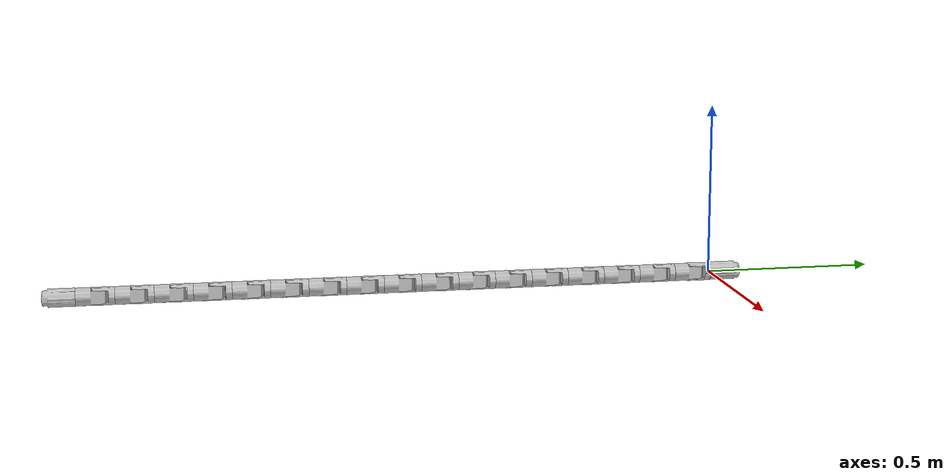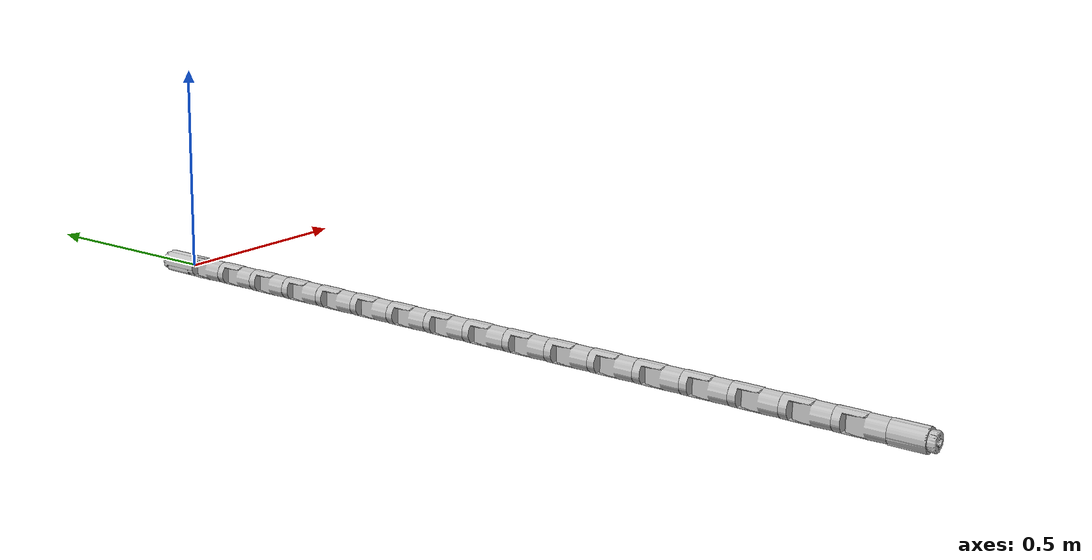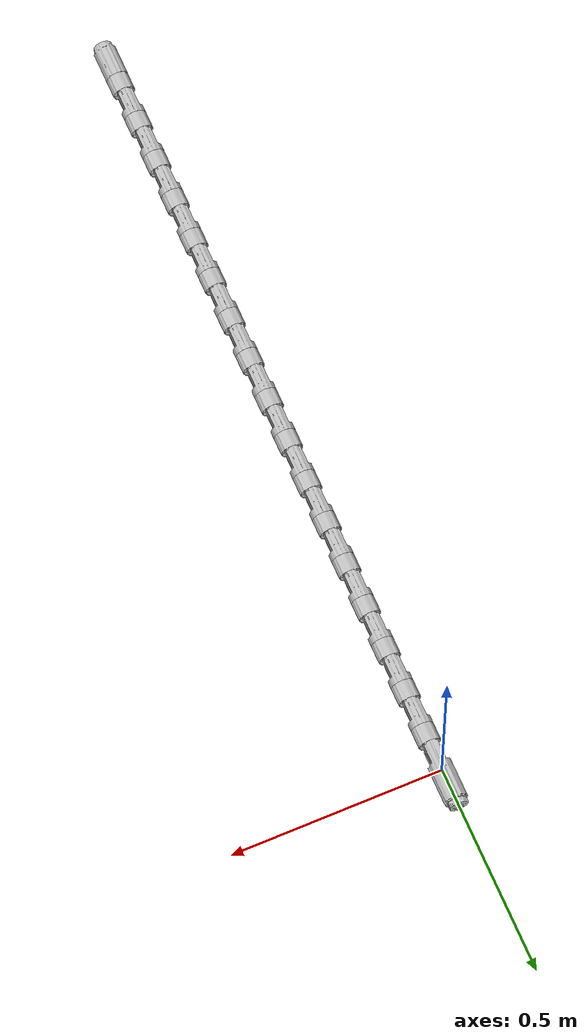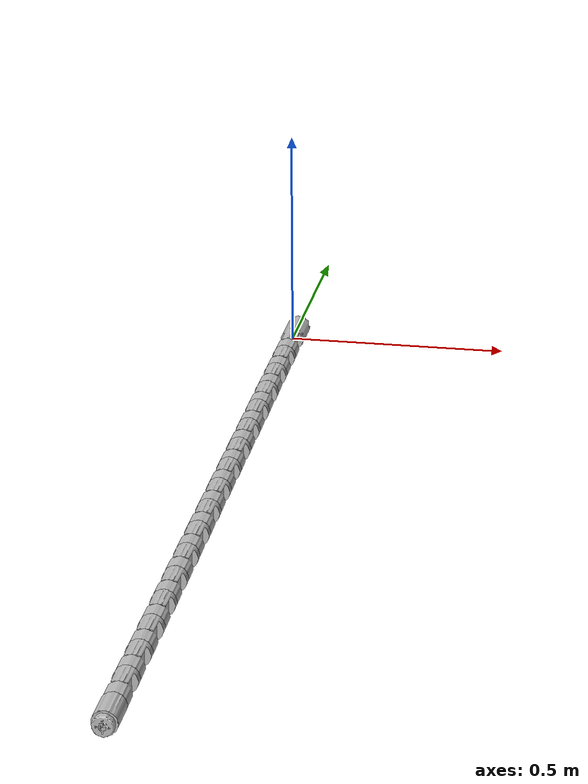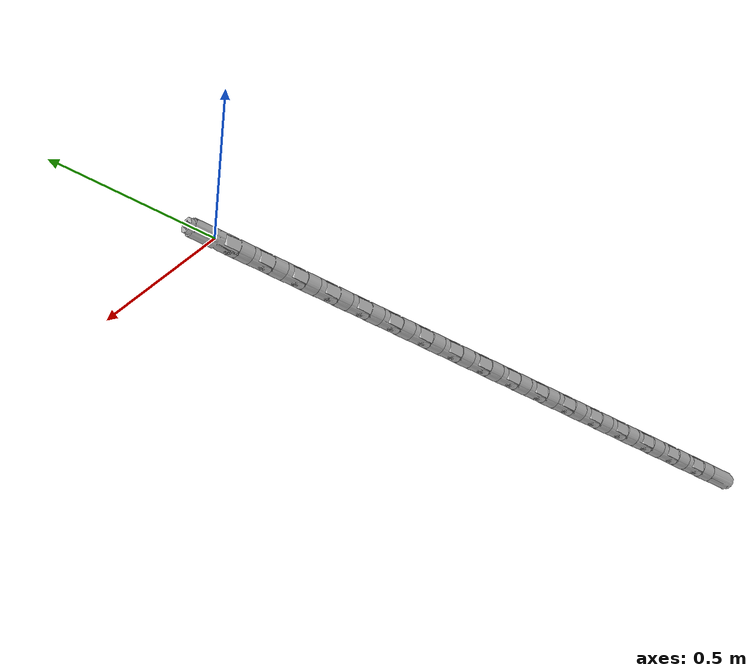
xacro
<?xml version="1.0"?>

<robot xmlns:xacro="http://www.ros.org/wiki/xacro" name="snake_PR">
  <xacro:include filename="$(find snake_test)/robot_description/urdf/snake_description_PR.xacro"/>

  <gazebo>
      <plugin
          name="gazebo_ros_control"
          filename="libgazebo_ros_control.so">
          <robotNamespace>/snake</robotNamespace>
          <robotSimType>gazebo_ros_control/DefaultRobotHWSim</robotSimType>
      </plugin>
  </gazebo>

  <link name="base_footprint">
    <visual>
        <origin xyz="0 0 0" rpy="0 0 0" />
          <geometry>
            <box size="0.001 0.001 0.001" />
          </geometry>
    </visual>
  </link>

   <link
    name="base_link">
    <inertial>
      <origin
        xyz="0.0020108 9.0747E-06 -0.025428"
        rpy="0 0 0" />
      <mass
        value="0.14384" />
      <inertia
        ixx="7.6577E-05"
        ixy="-7.9588E-12"
        ixz="-8.8176E-09"
        iyy="6.729E-05"
        iyz="2.369E-06"
        izz="4.0509E-05" />
    </inertial>
    <visual>
      <origin
        xyz="0 0 0"
        rpy="0 0 0" />
      <geometry>
        <mesh
          filename="package://snake_test/meshes/snake_PR/base_link.STL"/>
      </geometry>
      <material
        name="">
        <color
          rgba="0.75294 0.75294 0.75294 1" />
      </material>
    </visual>
    <collision>
      <origin
        xyz="0 0 0"
        rpy="0 0 0" />
      <geometry>
        <mesh
          filename="package://snake_test/meshes/snake_PR/base_link.STL" />
      </geometry>
    </collision>
  </link>

  <gazebo reference="base_link">
    <mu1>0.1</mu1>
    <mu2>1</mu2>
  </gazebo>

  <gazebo reference="base_link">
    <gravity>true</gravity>
    <sensor name="imu_sensor" type="imu">
      <always_on>true</always_on>
      <update_rate>100</update_rate>
      <visualize>true</visualize>
      <topic>__default_topic__</topic>
      <plugin filename="libgazebo_ros_imu_sensor.so" name="imu_plugin">
        <topicName>imu</topicName>
        <bodyName>body_link</bodyName>
        <updateRateHZ>100.0</updateRateHZ>
        <gaussianNoise>0.0</gaussianNoise>
        <xyzOffset>0 0 0</xyzOffset>
        <rpyOffset>0 0 0</rpyOffset>
        <frameName>imu_link</frameName>
      </plugin>
      <pose>0 0 0 0 0 0</pose>
    </sensor>
  </gazebo>

  <joint
    name="base_footprint_joint"
    type="fixed">
    <origin
      xyz="0 0 0"
      rpy="1.5708 0 0" />
    <parent
      link="base_footprint"/>
    <child
      link="base_link" />
  </joint>

  <xacro:link_a parent_link="base_link" child_link="link1" joint_name="joint1"/>
  <xacro:link_b parent_link="link1" child_link="link2" joint_name="joint2"/>
  <xacro:link_a parent_link="link2" child_link="link3" joint_name="joint3"/>
  <xacro:link_b parent_link="link3" child_link="link4" joint_name="joint4"/>
  <xacro:link_a parent_link="link4" child_link="link5" joint_name="joint5"/>
  <xacro:link_b parent_link="link5" child_link="link6" joint_name="joint6"/>
  <xacro:link_a parent_link="link6" child_link="link7" joint_name="joint7"/>
  <xacro:link_b parent_link="link7" child_link="link8" joint_name="joint8"/>
  <xacro:link_a parent_link="link8" child_link="link9" joint_name="joint9"/>
  <xacro:link_b parent_link="link9" child_link="link10" joint_name="joint10"/>
  <xacro:link_a parent_link="link10" child_link="link11" joint_name="joint11"/>
  <xacro:link_b parent_link="link11" child_link="link12" joint_name="joint12"/>
  <xacro:link_a parent_link="link12" child_link="link13" joint_name="joint13"/>
  <xacro:link_b parent_link="link13" child_link="link14" joint_name="joint14"/>
  <xacro:link_a parent_link="link14" child_link="link15" joint_name="joint15"/>
  <xacro:link_b parent_link="link15" child_link="link16" joint_name="joint16"/>
  <xacro:link_a parent_link="link16" child_link="link17" joint_name="joint17"/>
  <xacro:link_b parent_link="link17" child_link="link18" joint_name="joint18"/>
  <xacro:link_a parent_link="link18" child_link="link19" joint_name="joint19"/>
  <xacro:link_b parent_link="link19" child_link="link20" joint_name="joint20"/>
  <xacro:link_a parent_link="link20" child_link="link21" joint_name="joint21"/>
  <xacro:link_b parent_link="link21" child_link="link22" joint_name="joint22"/>
  <xacro:link_a parent_link="link22" child_link="link23" joint_name="joint23"/>
  <xacro:link_b parent_link="link23" child_link="link24" joint_name="joint24"/>
  <xacro:link_a parent_link="link24" child_link="link25" joint_name="joint25"/>
  <xacro:link_b parent_link="link25" child_link="link26" joint_name="joint26"/>
  <xacro:link_a parent_link="link26" child_link="link27" joint_name="joint27"/>
  <xacro:link_b parent_link="link27" child_link="link28" joint_name="joint28"/>
  <xacro:link_a parent_link="link28" child_link="link29" joint_name="joint29"/>
  <xacro:link_b parent_link="link29" child_link="link30" joint_name="joint30"/>
  <xacro:link_a parent_link="link30" child_link="link31" joint_name="joint31"/>
  <xacro:link_b parent_link="link31" child_link="link32" joint_name="joint32"/>
  <xacro:link_a parent_link="link32" child_link="link33" joint_name="joint33"/>

  <link
    name="rear_link">
    <inertial>
      <origin
        xyz="0.0026619 -1.4998E-17 0.040221"
        rpy="0 0 0" />
      <mass
        value="0.10865" />
      <inertia
        ixx="6.4597E-05"
        ixy="1.597E-21"
        ixz="8.8244E-09"
        iyy="5.536E-05"
        iyz="-1.1865E-20"
        izz="3.1735E-05" />
    </inertial>
    <visual>
      <origin
        xyz="0 0 0"
        rpy="0 0 0" />
      <geometry>
        <mesh
          filename="package://snake_test/meshes/snake_PR/rear_link.STL" />
      </geometry>
      <material
        name="">
        <color
          rgba="0.75294 0.75294 0.75294 1" />
      </material>
    </visual>
    <collision>
      <origin
        xyz="0 0 0"
        rpy="0 0 0" />
      <geometry>
        <mesh
          filename="package://snake_test/meshes/snake_PR/rear_link.STL" />
      </geometry>
    </collision>
  </link>

  <gazebo reference="rear_link">
    <mu1>0.1</mu1>
    <mu2>1</mu2>
  </gazebo>

  <joint
    name="joint34"
    type="revolute">
    <origin
      xyz="0.0705 0 0"
      rpy="1.5708 0 1.5708" />
    <parent
      link="link33" />
    <child
      link="rear_link" />
    <axis
      xyz="0 0 1" />
    <limit
      lower="-3.14"
      upper="3.14"
      effort="20"
      velocity="5" />
  </joint>

  <xacro:transision number="1"/>
  <xacro:transision number="2"/>
  <xacro:transision number="3"/>
  <xacro:transision number="4"/>
  <xacro:transision number="5"/>
  <xacro:transision number="6"/>
  <xacro:transision number="7"/>
  <xacro:transision number="8"/>
  <xacro:transision number="9"/>
  <xacro:transision number="10"/>
  <xacro:transision number="11"/>
  <xacro:transision number="12"/>
  <xacro:transision number="13"/>
  <xacro:transision number="14"/>
  <xacro:transision number="15"/>
  <xacro:transision number="16"/>
  <xacro:transision number="17"/>
  <xacro:transision number="18"/>
  <xacro:transision number="19"/>
  <xacro:transision number="20"/>
  <xacro:transision number="21"/>
  <xacro:transision number="22"/>
  <xacro:transision number="23"/>
  <xacro:transision number="24"/>
  <xacro:transision number="25"/>
  <xacro:transision number="26"/>
  <xacro:transision number="27"/>
  <xacro:transision number="28"/>
  <xacro:transision number="29"/>
  <xacro:transision number="30"/>
  <xacro:transision number="31"/>
  <xacro:transision number="32"/>
  <xacro:transision number="33"/>
  <xacro:transision number="34"/>

</robot>

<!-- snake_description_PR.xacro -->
<robot xmlns:xacro="http://www.ros.org/wiki/xacro" name="snake_PR">

  <xacro:macro name="link_a" params="parent_link child_link joint_name">
    <link
      name="${child_link}">
      <inertial>
        <origin
          xyz="0.026939 0.0010641 -0.0013511"
          rpy="0 0 0" />
        <mass
          value="0.064377" />
        <inertia
          ixx="1.1721E-05"
          ixy="-7.4444E-07"
          ixz="4.6838E-07"
          iyy="3.4126E-05"
          iyz="-2.5756E-07"
          izz="3.8957E-05" />
      </inertial>
      <visual>
        <origin
          xyz="0 0 0"
          rpy="0 0 0" />
        <geometry>
          <mesh
            filename="package://snake_test/meshes/snake_PR/link_a.STL"/>
        </geometry>
        <material
          name="">
          <color
            rgba="0.75294 0.75294 0.75294 1" />
        </material>
      </visual>
      <collision>
        <origin
          xyz="0 0 0"
          rpy="0 0 0" />
        <geometry>
          <mesh
            filename="package://snake_test/meshes/snake_PR/link_a.STL"/>
        </geometry>
      </collision>
    </link>

    <gazebo reference="${child_link}">
        <mu1>0.1</mu1>
        <mu2>1</mu2>
      </gazebo>

    <joint
      name="${joint_name}"
      type="revolute">
      <origin
        xyz="0 0 0.039"
        rpy="1.5708 -1.5708 -3.1416" />
      <parent
        link="${parent_link}" />
      <child
        link="${child_link}" />
      <axis
        xyz="0 0 1" />
      <limit
        lower="-1.57"
        upper="1.57"
        effort="20"
        velocity="5" />
    </joint>
  </xacro:macro>

  <xacro:macro name="link_b" params="parent_link child_link joint_name">

    <link
      name="${child_link}">
      <inertial>
        <origin
          xyz="-1.6762E-08 3.7099E-05 0.020256"
          rpy="0 0 0" />
        <mass
          value="0.035184" />
        <inertia
          ixx="1.1979E-05"
          ixy="-7.9588E-12"
          ixz="6.8574E-12"
          iyy="1.193E-05"
          iyz="2.369E-06"
          izz="8.7747E-06" />
      </inertial>
      <visual>
        <origin
          xyz="0 0 0"
          rpy="0 0 0" />
        <geometry>
          <mesh
            filename="package://snake_test/meshes/snake_PR/link_b.STL" />
        </geometry>
        <material
          name="">
          <color
            rgba="0.75294 0.75294 0.75294 1" />
        </material>
      </visual>
      <collision>
        <origin
          xyz="0 0 0"
          rpy="0 0 0" />
        <geometry>
          <mesh
            filename="package://snake_test/meshes/snake_PR/link_b.STL" />
        </geometry>
      </collision>
    </link>

    <gazebo reference="${child_link}">
      <mu1>0.1</mu1>
      <mu2>1</mu2>
    </gazebo>

    <joint
      name="${joint_name}"
      type="revolute">
      <origin
        xyz="0.0705 0 0"
        rpy="1.5708 0 1.5708" />
      <parent
        link="${parent_link}" />
      <child
        link="${child_link}" />
      <axis
        xyz="0 0 1" />
      <limit
        lower="-3.14"
        upper="3.14"
        effort="20"
        velocity="5" />
    </joint>
  </xacro:macro>

  <xacro:macro name="transision" params="number">
      <transmission
          name="trans${number}">
          <type>transmission_interface/SimpleTransmission</type>
          <joint
              name="joint${number}">
              <hardwareInterface>hardware_interface/PositionJointInterface</hardwareInterface>
          </joint>
          <actuator
              name="servo${number}">
              <mechanicalReduction>1</mechanicalReduction>
              <hardwareInterface>hardware_interface/PositionJointInterface</hardwareInterface>
          </actuator>
      </transmission>
  </xacro:macro>
</robot>
